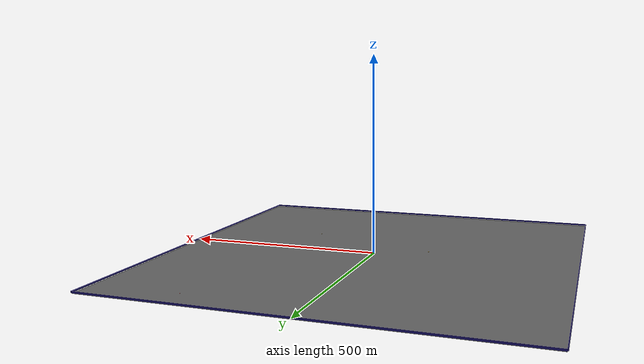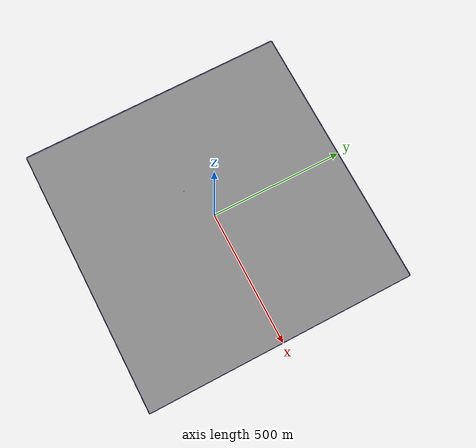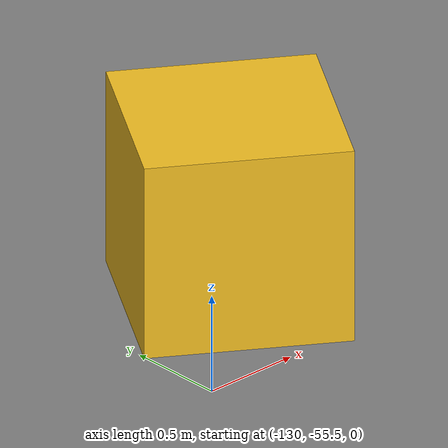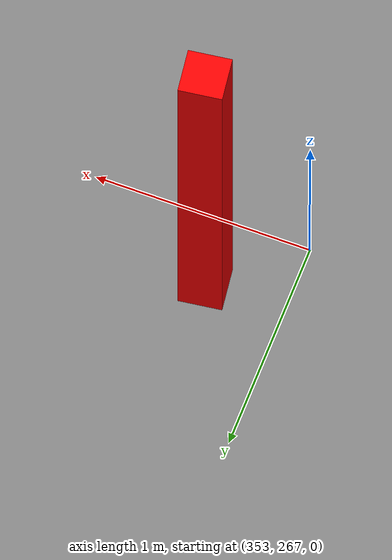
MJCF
<mujoco model="unnamed_model">
  <default>
    <default class="/" />
    <default class="border/" />
    <default class="border_1/" />
    <default class="border_2/" />
    <default class="border_3/" />
    <default class="agentplaceholder/" />
    <default class="placeholder_box/" />
    <default class="tree0/" />
    <default class="tree1/" />
    <default class="stone/" />
    <default class="stone_1/" />
  </default>
  <worldbody>
    <body name="border/">
      <body name="border/border" pos="0 501 2">
        <geom name="border/border_geom" class="border/" type="box" size="500 1 2" rgba="0.035000000000000003 0.016 0.28999999999999998 1" />
      </body>
    </body>
    <body name="border_1/">
      <body name="border_1/border" pos="0 -501 2">
        <geom name="border_1/border_geom" class="border_1/" type="box" size="500 1 2" rgba="0.035000000000000003 0.016 0.28999999999999998 1" />
      </body>
    </body>
    <body name="border_2/">
      <body name="border_2/border" pos="501 0 2">
        <geom name="border_2/border_geom" class="border_2/" type="box" size="1 500 2" rgba="0.035000000000000003 0.016 0.28999999999999998 1" />
      </body>
    </body>
    <body name="border_3/">
      <body name="border_3/border" pos="-501 0 2">
        <geom name="border_3/border_geom" class="border_3/" type="box" size="1 500 2" rgba="0.035000000000000003 0.016 0.28999999999999998 1" />
      </body>
    </body>
    <body euler="0 0 143.65214351247357" name="agentplaceholder/">
      <joint name="agentplaceholder/boxagent_freeJoint/" class="/" type="free" />
      <body name="agentplaceholder/agentplaceholder" pos="-250 0 3" euler="0 0 0">
        <geom name="agentplaceholder/boxagent_geom" class="agentplaceholder/" type="box" size="0.5 0.5 0.5" rgba="0.94899999999999995 0.74509999999999998 0.1333 1" euler="0 0 0" />
      </body>
    </body>
    <body name="placeholder_box/">
      <body name="placeholder_box/placeholder_box" pos="-129.3175 -54.891200000000026 0.5" euler="0 0 57.367228081686733">
        <geom name="placeholder_box/box_geom" class="placeholder_box/" type="box" size="0.5 0.5 0.5" rgba="0.94899999999999995 0.74509999999999998 0.1333 1" euler="0 0 0" />
      </body>
    </body>
    <body name="tree0/">
      <body name="tree0/tree0" pos="290.99930000000001 -416.0521 0.10000000000000001" euler="0 0 22.905641993558049">
        <geom name="tree0/tree_geom" class="tree0/" type="box" size="0.10000000000000001 0.10000000000000001 2" rgba="1 0 0 1" />
      </body>
    </body>
    <body name="tree1/">
      <body name="tree1/tree1" pos="353.37 267.32029999999997 0.10000000000000001" euler="0 0 97.553926571991155">
        <geom name="tree1/tree_geom" class="tree1/" type="box" size="0.10000000000000001 0.10000000000000001 2" rgba="1 0 0 1" />
      </body>
    </body>
    <body name="stone/">
      <body name="stone/stone" pos="284.3467 431.78210000000001 0.10000000000000001" euler="0 0 -35.971383470965833">
        <geom name="stone/stone_geom" class="stone/" type="box" size="0.10000000000000001 0.10000000000000001 2" rgba="1 0 0 1" />
      </body>
    </body>
    <body name="stone_1/">
      <body name="stone_1/stone" pos="304.6268 -497.6635 0.10000000000000001" euler="0 0 -141.71422921975528">
        <geom name="stone_1/stone_geom" class="stone_1/" type="box" size="0.10000000000000001 0.10000000000000001 2" rgba="1 0 0 1" />
      </body>
    </body>
    <geom name="base_plane" class="/" type="plane" size="500 500 0.10000000000000001" />
  </worldbody>
</mujoco>
